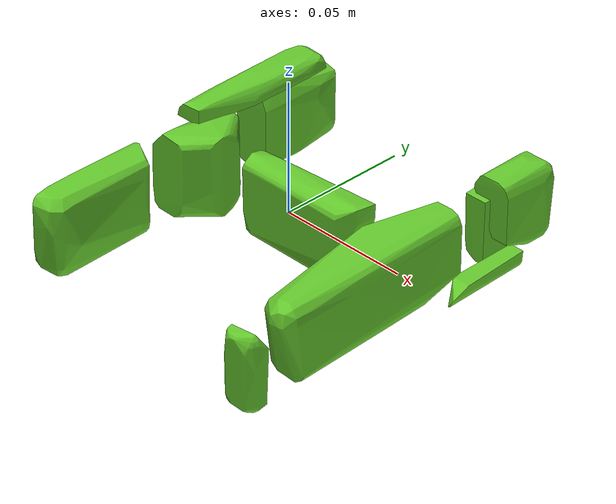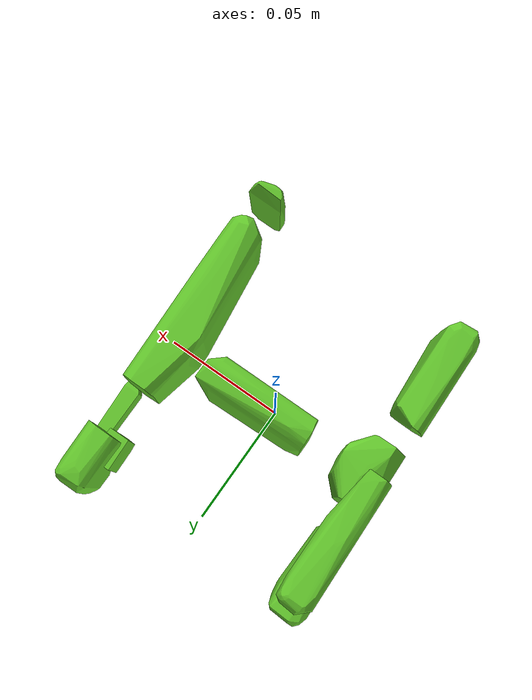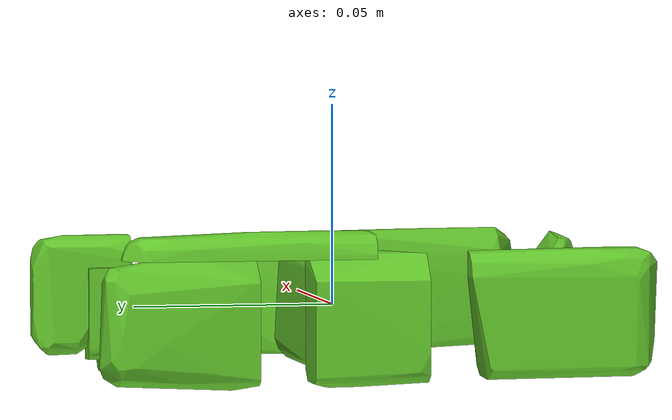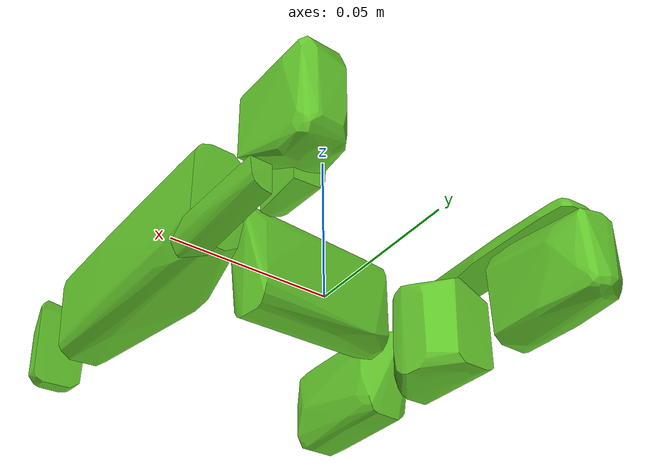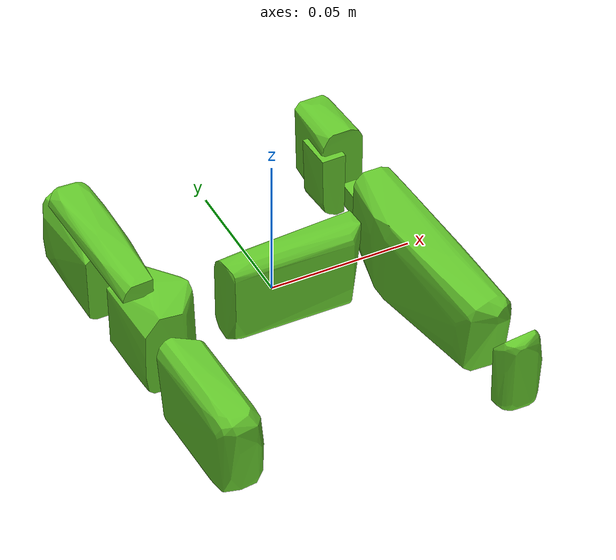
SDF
<?xml version='1.0' encoding='UTF-8'?>
<!-- This SDF was autogenerated by obj_to_drake_sdf.py -->
<sdf version="1.7">
  <model name="H_shape_texture">
    <link name="H_shape_texture">
      <inertial>
        <pose>0 0 0 0 0 0</pose>
        <mass>0.05</mass>
        <inertia>
          <ixx>8.2215353e-05</ixx>
          <iyy>0.00010533237</iyy>
          <izz>0.00017270903</izz>
          <ixy>-2.0354614e-06</ixy>
          <ixz>5.8360997e-07</ixz>
          <iyz>2.9909961e-07</iyz>
        </inertia>
      </inertial>
      <visual name="convex_0">
        <pose>0 0 0 0 0 0</pose>
        <geometry>
          <mesh>
            <uri>H_shape_texture_convex_0.obj</uri>
          </mesh>
        </geometry>
        <material>
          <diffuse>0.39215686274509803 0.7843137254901961 0.17254901960784313 1</diffuse>
        </material>
      </visual>
      <collision name="convex_0_volume">
        <pose>0 0 0 0 0 0</pose>
        <geometry>
          <mesh>
            <uri>H_shape_texture_convex_0.obj</uri>
          </mesh>
        </geometry>
        <drake:proximity_properties xmlns:drake="uri:drake">
          <drake:compliant_hydroelastic/>
          <drake:hydroelastic_modulus> 3.0e7 </drake:hydroelastic_modulus>
          <drake:mesh_resolution_hint> 0.02 </drake:mesh_resolution_hint>
          <drake:hunt_crossley_dissipation>10</drake:hunt_crossley_dissipation>
          <drake:mu_dynamic>0.3</drake:mu_dynamic>
        </drake:proximity_properties>
      </collision>
      <visual name="convex_1">
        <pose>0 0 0 0 0 0</pose>
        <geometry>
          <mesh>
            <uri>H_shape_texture_convex_1.obj</uri>
          </mesh>
        </geometry>
        <material>
          <diffuse>0.39215686274509803 0.7843137254901961 0.17254901960784313 1</diffuse>
        </material>
      </visual>
      <collision name="convex_1_volume">
        <pose>0 0 0 0 0 0</pose>
        <geometry>
          <mesh>
            <uri>H_shape_texture_convex_1.obj</uri>
          </mesh>
        </geometry>
        <drake:proximity_properties xmlns:drake="uri:drake">
          <drake:compliant_hydroelastic/>
          <drake:hydroelastic_modulus> 3.0e7 </drake:hydroelastic_modulus>
          <drake:mesh_resolution_hint> 0.02 </drake:mesh_resolution_hint>
          <drake:hunt_crossley_dissipation>10</drake:hunt_crossley_dissipation>
          <drake:mu_dynamic>0.3</drake:mu_dynamic>
        </drake:proximity_properties>
      </collision>
      <visual name="convex_2">
        <pose>0 0 0 0 0 0</pose>
        <geometry>
          <mesh>
            <uri>H_shape_texture_convex_2.obj</uri>
          </mesh>
        </geometry>
        <material>
          <diffuse>0.39215686274509803 0.7843137254901961 0.17254901960784313 1</diffuse>
        </material>
      </visual>
      <collision name="convex_2_volume">
        <pose>0 0 0 0 0 0</pose>
        <geometry>
          <mesh>
            <uri>H_shape_texture_convex_2.obj</uri>
          </mesh>
        </geometry>
        <drake:proximity_properties xmlns:drake="uri:drake">
          <drake:compliant_hydroelastic/>
          <drake:hydroelastic_modulus> 3.0e7 </drake:hydroelastic_modulus>
          <drake:mesh_resolution_hint> 0.02 </drake:mesh_resolution_hint>
          <drake:hunt_crossley_dissipation>10</drake:hunt_crossley_dissipation>
          <drake:mu_dynamic>0.3</drake:mu_dynamic>
        </drake:proximity_properties>
      </collision>
      <visual name="convex_3">
        <pose>0 0 0 0 0 0</pose>
        <geometry>
          <mesh>
            <uri>H_shape_texture_convex_3.obj</uri>
          </mesh>
        </geometry>
        <material>
          <diffuse>0.39215686274509803 0.7843137254901961 0.17254901960784313 1</diffuse>
        </material>
      </visual>
      <collision name="convex_3_volume">
        <pose>0 0 0 0 0 0</pose>
        <geometry>
          <mesh>
            <uri>H_shape_texture_convex_3.obj</uri>
          </mesh>
        </geometry>
        <drake:proximity_properties xmlns:drake="uri:drake">
          <drake:compliant_hydroelastic/>
          <drake:hydroelastic_modulus> 3.0e7 </drake:hydroelastic_modulus>
          <drake:mesh_resolution_hint> 0.02 </drake:mesh_resolution_hint>
          <drake:hunt_crossley_dissipation>10</drake:hunt_crossley_dissipation>
          <drake:mu_dynamic>0.3</drake:mu_dynamic>
        </drake:proximity_properties>
      </collision>
      <visual name="convex_4">
        <pose>0 0 0 0 0 0</pose>
        <geometry>
          <mesh>
            <uri>H_shape_texture_convex_4.obj</uri>
          </mesh>
        </geometry>
        <material>
          <diffuse>0.39215686274509803 0.7843137254901961 0.17254901960784313 1</diffuse>
        </material>
      </visual>
      <collision name="convex_4_volume">
        <pose>0 0 0 0 0 0</pose>
        <geometry>
          <mesh>
            <uri>H_shape_texture_convex_4.obj</uri>
          </mesh>
        </geometry>
        <drake:proximity_properties xmlns:drake="uri:drake">
          <drake:compliant_hydroelastic/>
          <drake:hydroelastic_modulus> 3.0e7 </drake:hydroelastic_modulus>
          <drake:mesh_resolution_hint> 0.02 </drake:mesh_resolution_hint>
          <drake:hunt_crossley_dissipation>10</drake:hunt_crossley_dissipation>
          <drake:mu_dynamic>0.3</drake:mu_dynamic>
        </drake:proximity_properties>
      </collision>
      <visual name="convex_5">
        <pose>0 0 0 0 0 0</pose>
        <geometry>
          <mesh>
            <uri>H_shape_texture_convex_5.obj</uri>
          </mesh>
        </geometry>
        <material>
          <diffuse>0.39215686274509803 0.7843137254901961 0.17254901960784313 1</diffuse>
        </material>
      </visual>
      <collision name="convex_5_volume">
        <pose>0 0 0 0 0 0</pose>
        <geometry>
          <mesh>
            <uri>H_shape_texture_convex_5.obj</uri>
          </mesh>
        </geometry>
        <drake:proximity_properties xmlns:drake="uri:drake">
          <drake:compliant_hydroelastic/>
          <drake:hydroelastic_modulus> 3.0e7 </drake:hydroelastic_modulus>
          <drake:mesh_resolution_hint> 0.02 </drake:mesh_resolution_hint>
          <drake:hunt_crossley_dissipation>10</drake:hunt_crossley_dissipation>
          <drake:mu_dynamic>0.3</drake:mu_dynamic>
        </drake:proximity_properties>
      </collision>
      <visual name="convex_6">
        <pose>0 0 0 0 0 0</pose>
        <geometry>
          <mesh>
            <uri>H_shape_texture_convex_6.obj</uri>
          </mesh>
        </geometry>
        <material>
          <diffuse>0.39215686274509803 0.7843137254901961 0.17254901960784313 1</diffuse>
        </material>
      </visual>
      <collision name="convex_6_volume">
        <pose>0 0 0 0 0 0</pose>
        <geometry>
          <mesh>
            <uri>H_shape_texture_convex_6.obj</uri>
          </mesh>
        </geometry>
        <drake:proximity_properties xmlns:drake="uri:drake">
          <drake:compliant_hydroelastic/>
          <drake:hydroelastic_modulus> 3.0e7 </drake:hydroelastic_modulus>
          <drake:mesh_resolution_hint> 0.02 </drake:mesh_resolution_hint>
          <drake:hunt_crossley_dissipation>10</drake:hunt_crossley_dissipation>
          <drake:mu_dynamic>0.3</drake:mu_dynamic>
        </drake:proximity_properties>
      </collision>
      <visual name="convex_7">
        <pose>0 0 0 0 0 0</pose>
        <geometry>
          <mesh>
            <uri>H_shape_texture_convex_7.obj</uri>
          </mesh>
        </geometry>
        <material>
          <diffuse>0.39215686274509803 0.7843137254901961 0.17254901960784313 1</diffuse>
        </material>
      </visual>
      <collision name="convex_7_volume">
        <pose>0 0 0 0 0 0</pose>
        <geometry>
          <mesh>
            <uri>H_shape_texture_convex_7.obj</uri>
          </mesh>
        </geometry>
        <drake:proximity_properties xmlns:drake="uri:drake">
          <drake:compliant_hydroelastic/>
          <drake:hydroelastic_modulus> 3.0e7 </drake:hydroelastic_modulus>
          <drake:mesh_resolution_hint> 0.02 </drake:mesh_resolution_hint>
          <drake:hunt_crossley_dissipation>10</drake:hunt_crossley_dissipation>
          <drake:mu_dynamic>0.3</drake:mu_dynamic>
        </drake:proximity_properties>
      </collision>
      <visual name="convex_8">
        <pose>0 0 0 0 0 0</pose>
        <geometry>
          <mesh>
            <uri>H_shape_texture_convex_8.obj</uri>
          </mesh>
        </geometry>
        <material>
          <diffuse>0.39215686274509803 0.7843137254901961 0.17254901960784313 1</diffuse>
        </material>
      </visual>
      <collision name="convex_8_volume">
        <pose>0 0 0 0 0 0</pose>
        <geometry>
          <mesh>
            <uri>H_shape_texture_convex_8.obj</uri>
          </mesh>
        </geometry>
        <drake:proximity_properties xmlns:drake="uri:drake">
          <drake:compliant_hydroelastic/>
          <drake:hydroelastic_modulus> 3.0e7 </drake:hydroelastic_modulus>
          <drake:mesh_resolution_hint> 0.02 </drake:mesh_resolution_hint>
          <drake:hunt_crossley_dissipation>10</drake:hunt_crossley_dissipation>
          <drake:mu_dynamic>0.3</drake:mu_dynamic>
        </drake:proximity_properties>
      </collision>
      <visual name="convex_9">
        <pose>0 0 0 0 0 0</pose>
        <geometry>
          <mesh>
            <uri>H_shape_texture_convex_9.obj</uri>
          </mesh>
        </geometry>
        <material>
          <diffuse>0.39215686274509803 0.7843137254901961 0.17254901960784313 1</diffuse>
        </material>
      </visual>
      <collision name="convex_9_volume">
        <pose>0 0 0 0 0 0</pose>
        <geometry>
          <mesh>
            <uri>H_shape_texture_convex_9.obj</uri>
          </mesh>
        </geometry>
        <drake:proximity_properties xmlns:drake="uri:drake">
          <drake:compliant_hydroelastic/>
          <drake:hydroelastic_modulus> 3.0e7 </drake:hydroelastic_modulus>
          <drake:mesh_resolution_hint> 0.02 </drake:mesh_resolution_hint>
          <drake:hunt_crossley_dissipation>10</drake:hunt_crossley_dissipation>
          <drake:mu_dynamic>0.3</drake:mu_dynamic>
        </drake:proximity_properties>
      </collision>
    </link>
  </model>
</sdf>
